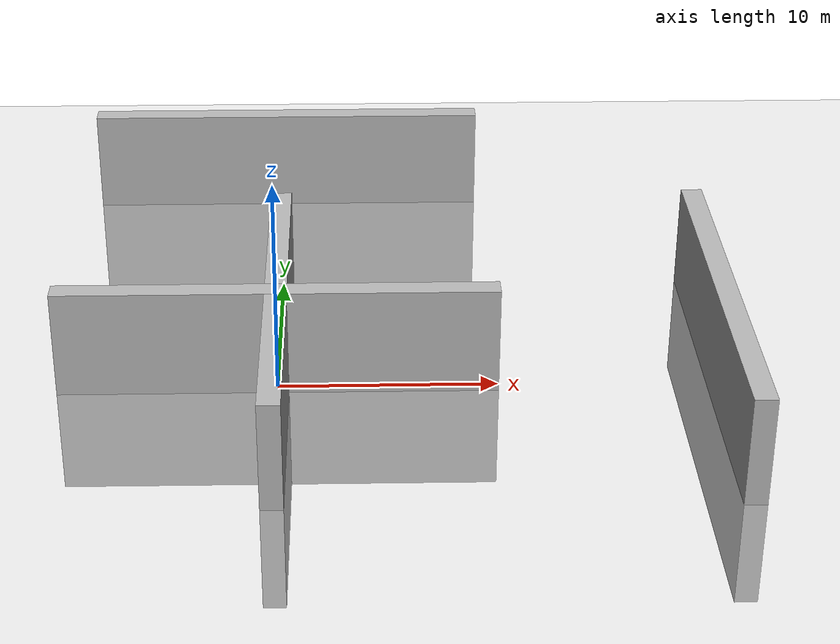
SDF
<?xml version="1.0" ?>
<sdf version="1.4">
  <world name="default">
    <light type="point" name="point_light_1">
      <pose>-4 0 4 0 0 0</pose>
      <diffuse>1 1 1 1</diffuse>
      <specular>.1 .1 .1 1</specular>
      <attenuation>
        <range>20</range>
        <linear>0.1</linear>
        <constant>0.0</constant>
        <quadratic>0.01</quadratic>
      </attenuation>
      <cast_shadows>false</cast_shadows>
    </light>

    <light type="point" name="point_light_2">
      <pose>4 0 4 0 0 0</pose>
      <diffuse>1 1 1 1</diffuse>
      <specular>.1 .1 .1 1</specular>
      <attenuation>
        <range>20</range>
        <linear>0.1</linear>
        <constant>0.0</constant>
        <quadratic>0.01</quadratic>
      </attenuation>
      <cast_shadows>false</cast_shadows>
    </light>

    <include>
      <uri>model://ground_plane</uri>
    </include>
    <include>
      <uri>model://sun</uri>
    </include>

    <include>
      <uri>model://textured_boundary</uri>
    </include>

    <!-- Only require one ROS interface plugin per world, as any other plugin can connect a Gazebo
    topic to a ROS topic (or vise versa). -->
    <plugin name="ros_interface_plugin" filename="librotors_gazebo_ros_interface_plugin.so"></plugin>

    <spherical_coordinates>
      <surface_model>EARTH_WGS84</surface_model>
      <latitude_deg>47.3667</latitude_deg>
      <longitude_deg>8.5500</longitude_deg>
      <elevation>500.0</elevation>
      <heading_deg>0</heading_deg>
    </spherical_coordinates>
    <physics type='ode'>
      <ode>
        <solver>
          <type>quick</type>
          <iters>1000</iters>
          <sor>1.3</sor>
        </solver>
        <constraints>
          <cfm>0</cfm>
          <erp>0.2</erp>
          <contact_max_correcting_vel>100</contact_max_correcting_vel>
          <contact_surface_layer>0.001</contact_surface_layer>
        </constraints>
      </ode>
      <max_step_size>0.01</max_step_size>
      <real_time_factor>1</real_time_factor>
      <real_time_update_rate>100</real_time_update_rate>
      <gravity>0 0 -9.8</gravity>
    </physics>
  </world>
</sdf>

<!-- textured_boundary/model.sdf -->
<sdf version="1.5">
  <model name="textured_boundary">
    <static>true</static>
    <link name="link">
      <collision name="collision1">
        <pose>0 0 0 0 0 0</pose>
        <geometry>
          <box>
            <size>1 20 10</size>
          </box>
        </geometry>
      </collision>
      <visual name="visual1">
        <cast_shadows>false</cast_shadows>
        <pose>0 0 0 0 0 0</pose>
        <geometry>
          <box>
            <size>1 20 10</size>
          </box>
        </geometry>
        <material>
          <script>
            <uri>model://textured_boundary/materials/scripts</uri>
            <uri>model://textured_boundary/materials/textures</uri>
            <name>wall/1</name>
          </script>
        </material>
      </visual>
      <collision name="collision2">
        <pose>0 20 0 0 0 -1.570796</pose>
        <geometry>
          <box>
            <size>1 20 10</size>
          </box>
        </geometry>
      </collision>
      <visual name="visual2">
        <cast_shadows>false</cast_shadows>
        <pose>0 20 0 0 0 -1.570796</pose>
        <geometry>
          <box>
            <size>1 20 10</size>
          </box>
        </geometry>
        <material>
          <script>
            <uri>model://textured_boundary/materials/scripts</uri>
            <uri>model://textured_boundary/materials/textures</uri>
            <name>wall/1</name>
          </script>
        </material>
      </visual>
      <collision name="collision3">
        <pose>20 0 0 0 0 0</pose>
        <geometry>
          <box>
            <size>1 20 10</size>
          </box>
        </geometry>
      </collision>
      <visual name="visual3">
        <cast_shadows>false</cast_shadows>
        <pose>20 0 0 0 0 0</pose>
        <geometry>
          <box>
            <size>1 20 10</size>
          </box>
        </geometry>
        <material>
          <script>
            <uri>model://textured_boundary/materials/scripts</uri>
            <uri>model://textured_boundary/materials/textures</uri>
            <name>wall/1</name>
          </script>
        </material>
      </visual>
      <collision name="collision4">
        <pose>0 0 0 0 0 -1.570796</pose>
        <geometry>
          <box>
            <size>1 20 10</size>
          </box>
        </geometry>
      </collision>
      <visual name="visual4">
        <cast_shadows>false</cast_shadows>
        <pose>0 0 0 0 0 -1.570796</pose>
        <geometry>
          <box>
            <size>1 20 10</size>
          </box>
        </geometry>
        <material>
          <script>
            <uri>model://textured_boundary/materials/scripts</uri>
            <uri>model://textured_boundary/materials/textures</uri>
            <name>wall/1</name>
          </script>
        </material>
      </visual>
    </link>
  </model>
</sdf>
